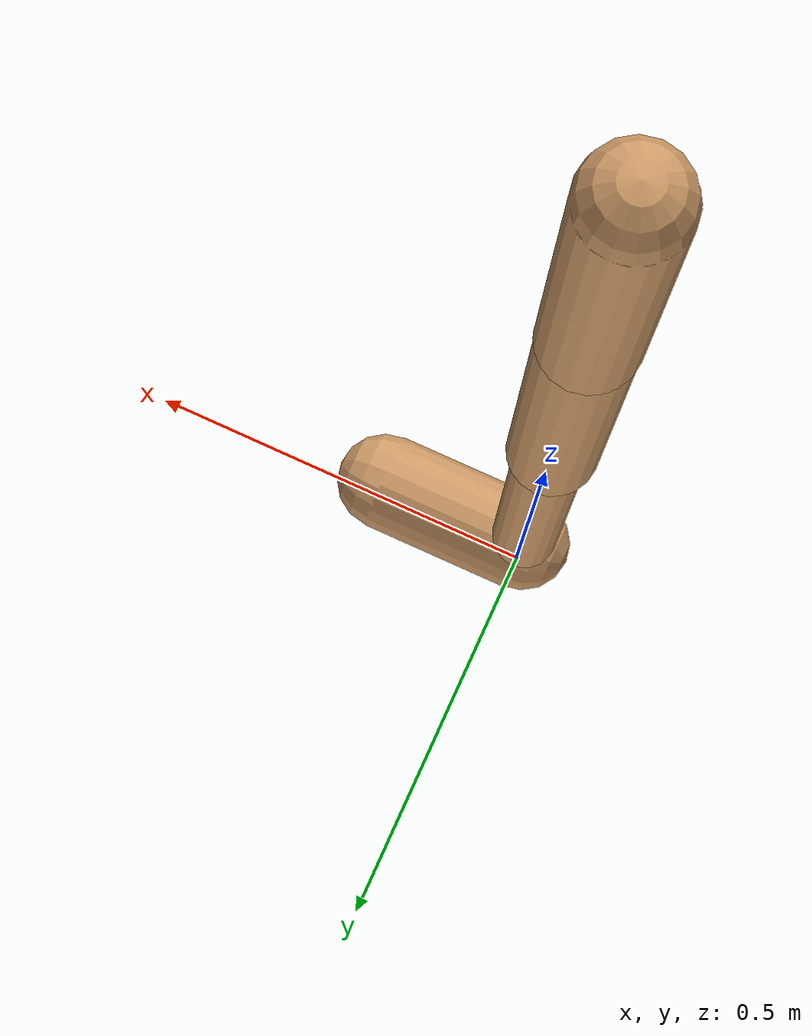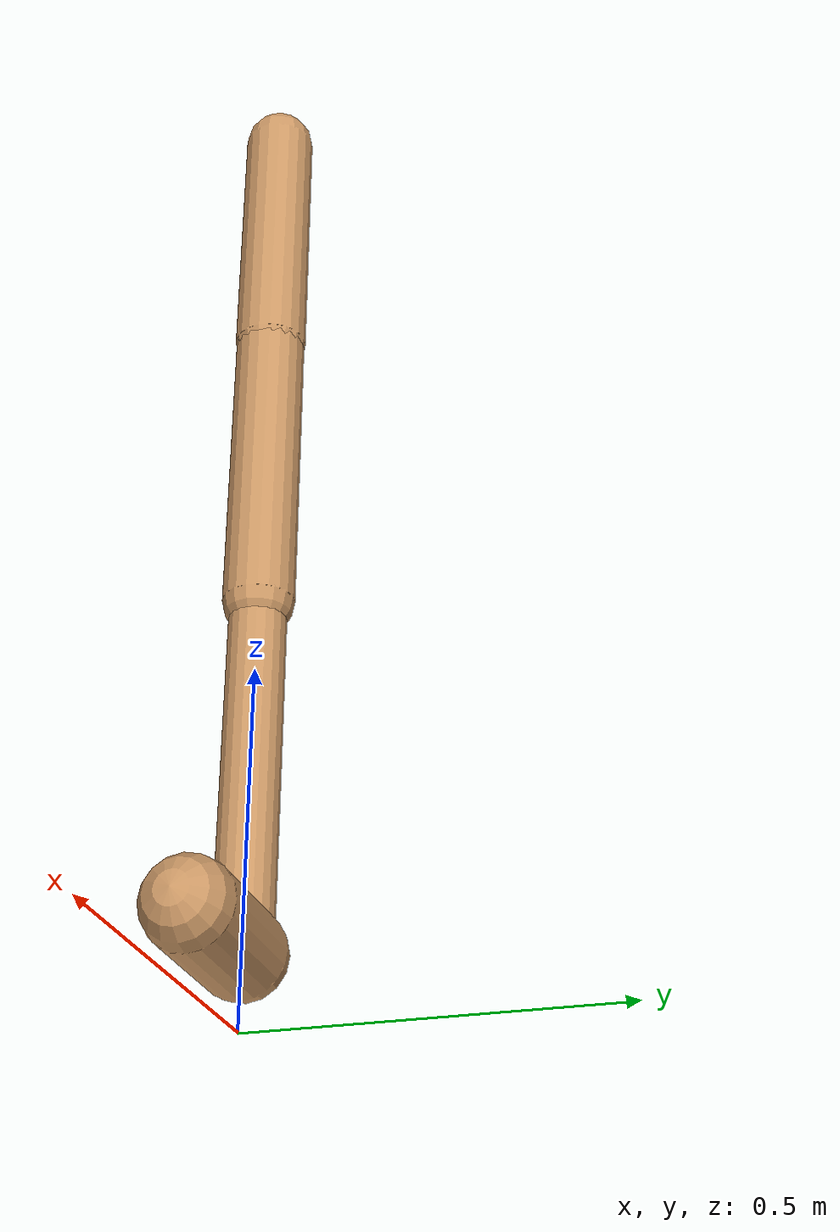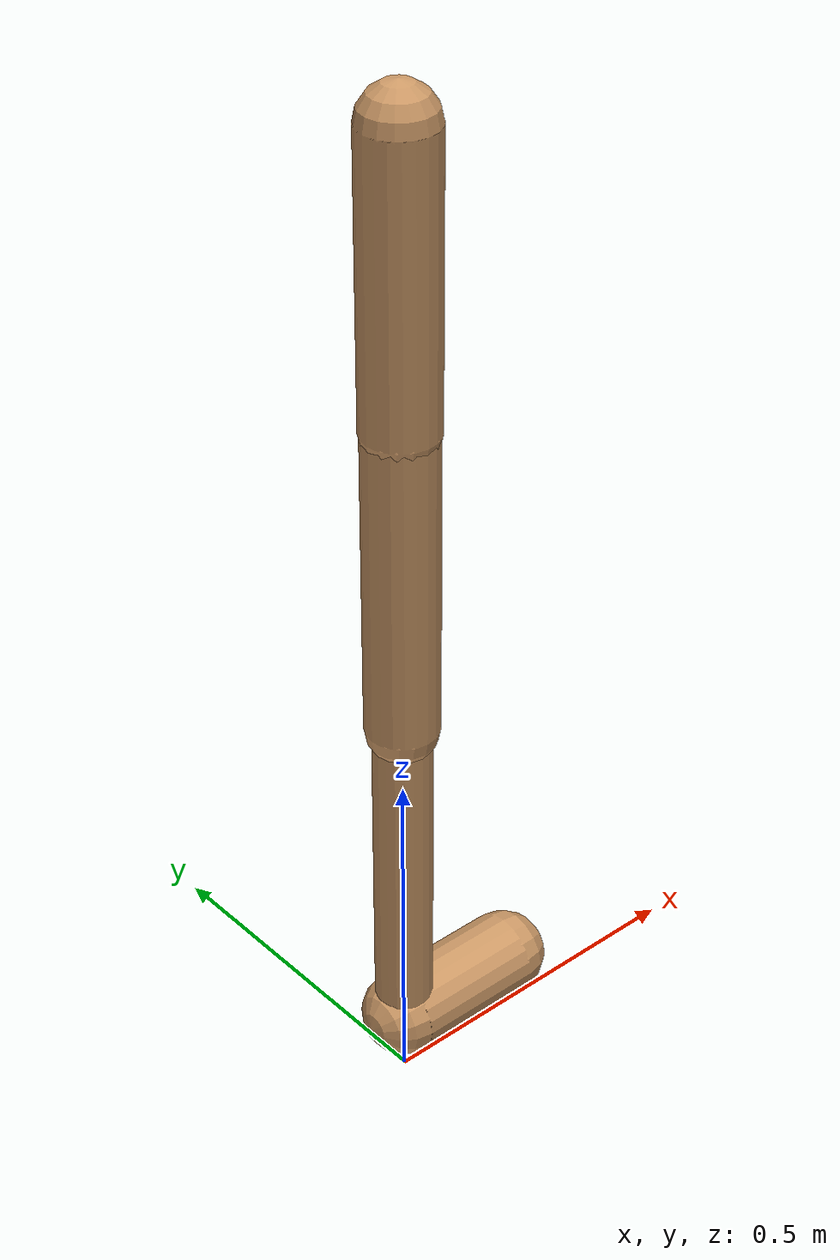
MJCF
<mujoco model="walker2d">
  <compiler angle="degree" coordinate="global" inertiafromgeom="true" />
  <default>
    <joint armature="0.01" damping=".1" limited="true" />
    <geom conaffinity="0" condim="3" contype="1" density="1000" friction="0.8 .1 .1" rgba="0.8 0.6 .4 1" />
  </default>
  <option integrator="RK4" timestep="0.002" />
  <worldbody>

    <body name="torso" pos="0 0 -0.011259828118786813">
      <joint armature="0" axis="1 0 0" damping="0" limited="false" name="ignorex" pos="0 0 0" stiffness="0" type="slide" />
      <joint armature="0" axis="0 0 1" damping="0" limited="false" name="ignorez" pos="0 0 0" ref="1.25" stiffness="0" type="slide" />
      <joint armature="0" axis="0 1 0" damping="0" limited="false" name="ignorey" pos="0 0 0" stiffness="0" type="hinge" />
      <geom fromto="0 0 1.45 0 0 1.05" name="torso_geom" size="0.05249282568590094" type="capsule" />
      <body name="thigh">
        <joint axis="0 -1 0" name="thigh_joint" pos="0 0 1.05" range="-150 0" type="hinge" />
        <geom fromto="0.0 0.0 1.05 0.0 0.0 0.6053336027931095" name="thigh_geom" size="0.05078800755932003" type="capsule" />
        <body name="leg" pos="0.0 0.0 0.005333602793109571">
          <joint axis="0 -1 0" name="leg_joint" pos="0 0 0.6" range="-150 0" type="hinge" />
          <geom fromto="0.0 0.0 0.6 0.0 0.0 0.10592622532567728" name="leg_geom" size="0.04063040604745602" type="capsule" />
          <body name="foot" pos="0.0 0.0 0.00592622532567727">
            <joint axis="0 -1 0" name="foot_joint" pos="0 0 0.1" range="-45 45" type="hinge" />
            <geom fromto="0.0 0.0 0.1 0.18827558373679348 0.0 0.1" name="foot_geom" size="0.06049737599565224" type="capsule" />
          </body>
        </body>
      </body>

      <body name="thigh_left">
        <joint axis="0 -1 0" name="thigh_left_joint" pos="0 0 1.05" range="-150 0" type="hinge" />
        <geom fromto="0.0 0.0 1.05 0.0 0.0 0.6053336027931095" name="thigh_left_geom" rgba=".7 .3 .6 1" size="0.05078800755932003" type="capsule" />
        <body name="leg_left" pos="0.0 0.0 0.005333602793109571">
          <joint axis="0 -1 0" name="leg_left_joint" pos="0 0 0.6" range="-150 0" type="hinge" />
          <geom fromto="0.0 0.0 0.6 0.0 0.0 0.10592622532567728" name="leg_left_geom" rgba=".7 .3 .6 1" size="0.04063040604745602" type="capsule" />
          <body name="foot_left" pos="0.0 0.0 0.00592622532567727">
            <joint axis="0 -1 0" name="foot_left_joint" pos="0 0 0.1" range="-45 45" type="hinge" />
            <geom fromto="0.0 0.0 0.1 0.18827558373679348 0.0 0.1" name="foot_left_geom" rgba=".7 .3 .6 1" size="0.06049737599565224" type="capsule" />
          </body>
        </body>
      </body>
    </body>
  </worldbody>
  <actuator>

    <motor ctrllimited="true" ctrlrange="-1.0 1.0" gear="100" joint="thigh_joint" />
    <motor ctrllimited="true" ctrlrange="-1.0 1.0" gear="100" joint="leg_joint" />
    <motor ctrllimited="true" ctrlrange="-1.0 1.0" gear="100" joint="foot_joint" />
    <motor ctrllimited="true" ctrlrange="-1.0 1.0" gear="100" joint="thigh_left_joint" />
    <motor ctrllimited="true" ctrlrange="-1.0 1.0" gear="100" joint="leg_left_joint" />
    <motor ctrllimited="true" ctrlrange="-1.0 1.0" gear="100" joint="foot_left_joint" />

  </actuator>
</mujoco>
